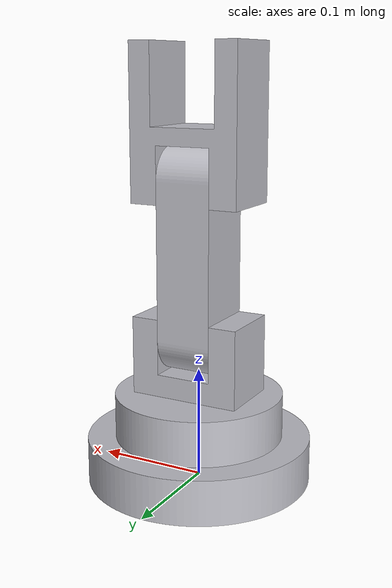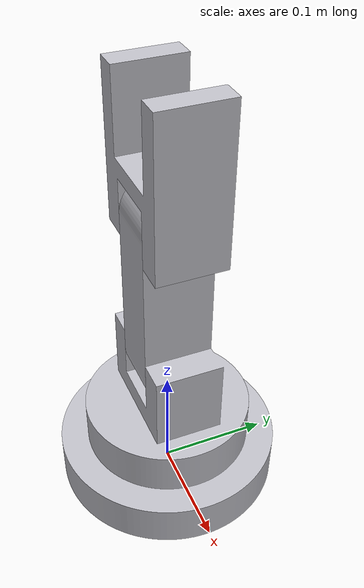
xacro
<?xml version="1.0" ?>
<robot name="robotic" xmlns:xacro="http://www.ros.org/wiki/xacro">

<xacro:include filename="$(find robotic_description)/urdf/materials.xacro" />
<xacro:include filename="$(find robotic_description)/urdf/robotic.trans" />
<xacro:include filename="$(find robotic_description)/urdf/robotic.gazebo" />
<link name="base_link">
  <inertial>
    <origin xyz="1.4475057750305068e-17 0.0 0.02" rpy="0 0 0"/>
    <mass value="9.864600932271951"/>
    <inertia ixx="0.025977" iyy="0.025977" izz="0.049323" ixy="0.0" iyz="0.0" ixz="0.0"/>
  </inertial>
  <visual>
    <origin xyz="0 0 0" rpy="0 0 0"/>
    <geometry>
      <mesh filename="file://$(find robotic_description)/meshes/base_link.stl" scale="0.001 0.001 0.001"/>
    </geometry>
    <material name="silver"/>
  </visual>
  <collision>
    <origin xyz="0 0 0" rpy="0 0 0"/>
    <geometry>
      <mesh filename="file://$(find robotic_description)/meshes/base_link.stl" scale="0.001 0.001 0.001"/>
    </geometry>
  </collision>
</link>

<link name="second_link_1">
  <inertial>
    <origin xyz="0.0 0.0 0.03455777541352945" rpy="0 0 0"/>
    <mass value="7.79164553605637"/>
    <inertia ixx="0.014237" iyy="0.016126" izz="0.018773" ixy="0.0" iyz="0.0" ixz="0.0"/>
  </inertial>
  <visual>
    <origin xyz="-0.0 -0.0 -0.04" rpy="0 0 0"/>
    <geometry>
      <mesh filename="file://$(find robotic_description)/meshes/second_link_1.stl" scale="0.001 0.001 0.001"/>
    </geometry>
    <material name="silver"/>
  </visual>
  <collision>
    <origin xyz="-0.0 -0.0 -0.04" rpy="0 0 0"/>
    <geometry>
      <mesh filename="file://$(find robotic_description)/meshes/second_link_1.stl" scale="0.001 0.001 0.001"/>
    </geometry>
  </collision>
</link>

<link name="third_link_1">
  <inertial>
    <origin xyz="-4.2904276158884305e-18 -6.198809819435604e-14 0.06999999999999995" rpy="0 0 0"/>
    <mass value="4.160152581573786"/>
    <inertia ixx="0.013069" iyy="0.012703" izz="0.002099" ixy="0.0" iyz="0.0" ixz="-0.0"/>
  </inertial>
  <visual>
    <origin xyz="-0.0 -0.0 -0.13" rpy="0 0 0"/>
    <geometry>
      <mesh filename="file://$(find robotic_description)/meshes/third_link_1.stl" scale="0.001 0.001 0.001"/>
    </geometry>
    <material name="silver"/>
  </visual>
  <collision>
    <origin xyz="-0.0 -0.0 -0.13" rpy="0 0 0"/>
    <geometry>
      <mesh filename="file://$(find robotic_description)/meshes/third_link_1.stl" scale="0.001 0.001 0.001"/>
    </geometry>
  </collision>
</link>

<link name="fourth_link_1">
  <inertial>
    <origin xyz="1.0714798190161185e-17 5.357399095080592e-18 0.04146146933144895" rpy="0 0 0"/>
    <mass value="3.3316229023675548"/>
    <inertia ixx="0.005513" iyy="0.009035" izz="0.005453" ixy="0.0" iyz="0.0" ixz="0.0"/>
  </inertial>
  <visual>
    <origin xyz="-0.0 -0.0 -0.27" rpy="0 0 0"/>
    <geometry>
      <mesh filename="file://$(find robotic_description)/meshes/fourth_link_1.stl" scale="0.001 0.001 0.001"/>
    </geometry>
    <material name="silver"/>
  </visual>
  <collision>
    <origin xyz="-0.0 -0.0 -0.27" rpy="0 0 0"/>
    <geometry>
      <mesh filename="file://$(find robotic_description)/meshes/fourth_link_1.stl" scale="0.001 0.001 0.001"/>
    </geometry>
  </collision>
</link>

<joint name="Revolute 1" type="revolute">
  <origin xyz="0.0 0.0 0.04" rpy="0 0 0"/>
  <parent link="base_link"/>
  <child link="second_link_1"/>
  <axis xyz="0.0 0.0 1.0"/>
  <limit upper="6.283185" lower="0.0" effort="100" velocity="100"/>
</joint>

<joint name="Revolute 2" type="revolute">
  <origin xyz="0.0 0.0 0.09" rpy="0 0 0"/>
  <parent link="second_link_1"/>
  <child link="third_link_1"/>
  <axis xyz="-1.0 0.0 0.0"/>
  <limit upper="1.570796" lower="-1.570796" effort="100" velocity="100"/>
</joint>

<joint name="Revolute 3" type="revolute">
  <origin xyz="0.0 0.0 0.14" rpy="0 0 0"/>
  <parent link="third_link_1"/>
  <child link="fourth_link_1"/>
  <axis xyz="1.0 0.0 0.0"/>
  <limit upper="1.570796" lower="-1.570796" effort="100" velocity="100"/>
</joint>

</robot>

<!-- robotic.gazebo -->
<robot name="robotic" xmlns:xacro="http://www.ros.org/wiki/xacro" >

<xacro:property name="body_color" value="Gazebo/Silver" />

<gazebo>
  <plugin name="control" filename="libgazebo_ros_control.so"/>
</gazebo>
<gazebo reference="base_link">
  <material>${body_color}</material>
  <mu1>0.2</mu1>
  <mu2>0.2</mu2>
  <self_collide>true</self_collide>
  <gravity>true</gravity>
</gazebo>

<gazebo reference="second_link_1">
  <material>${body_color}</material>
  <mu1>0.2</mu1>
  <mu2>0.2</mu2>
  <self_collide>true</self_collide>
</gazebo>

<gazebo reference="third_link_1">
  <material>${body_color}</material>
  <mu1>0.2</mu1>
  <mu2>0.2</mu2>
  <self_collide>true</self_collide>
</gazebo>

<gazebo reference="fourth_link_1">
  <material>${body_color}</material>
  <mu1>0.2</mu1>
  <mu2>0.2</mu2>
  <self_collide>true</self_collide>
</gazebo>

</robot>
